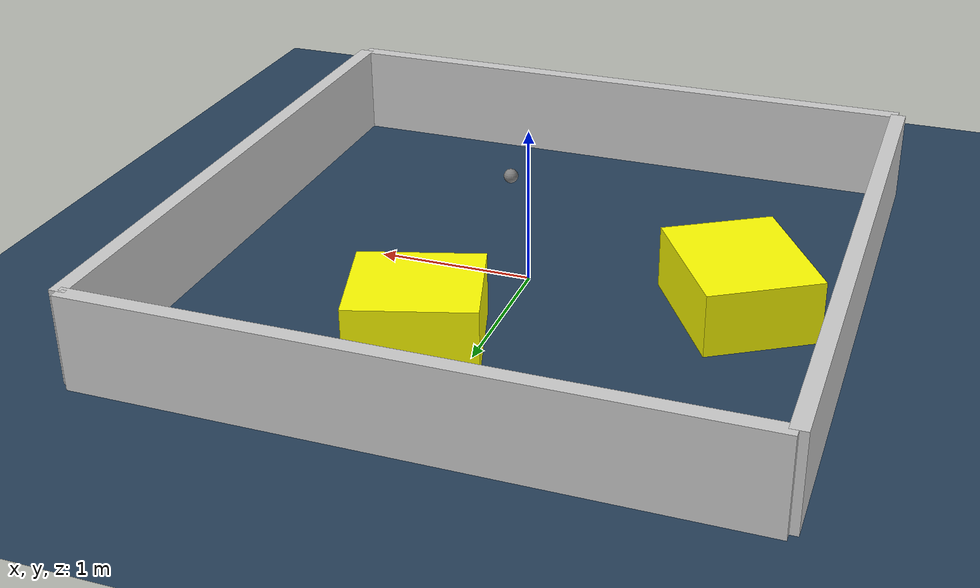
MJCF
<?xml version="1.0" ?>
<mujoco model="generated_environment">
  <option timestep="0.01" integrator="RK4" cone="elliptic"/>
  <default>
    <geom density="1"/>
  </default>
  <asset>
    <texture builtin="gradient" height="3072" rgb1="0.3 0.5 0.7" rgb2="0 0 0" type="skybox" width="512"/>
    <texture builtin="checker" height="300" mark="edge" markrgb="0.8 0.8 0.8" name="groundplane" rgb1="0.2 0.3 0.4" rgb2="0.1 0.2 0.3" type="2d" width="300"/>
    <material name="groundplane" reflectance="0.2" texrepeat="5 5" texture="groundplane" texuniform="true"/>
    <material name="robot" rgba="0.0 1.0 0.0 1"/>
  </asset>
  <worldbody>
    <light dir="0 0 -1" directional="true" pos="0 0 1.5"/>
    <geom condim="4" friction="1.0 0.005 0.001" material="groundplane" name="floor" size="0 0 0.05" type="plane"/>
    <body name="walls">
      <geom name="wall_1" condim="4" pos="-2.0 0.0 0.3" rgba="0.800000011920929 0.800000011920929 0.800000011920929 1.0" size="0.05 2.0 0.3" type="box"/>
      <geom name="wall_2" condim="4" pos="2.0 0.0 0.3" rgba="0.800000011920929 0.800000011920929 0.800000011920929 1.0" size="0.05 2.0 0.3" type="box"/>
      <geom name="wall_3" condim="4" pos="0.0 -2.0 0.3" rgba="0.800000011920929 0.800000011920929 0.800000011920929 1.0" size="2.0 0.05 0.3" type="box"/>
      <geom name="wall_4" condim="4" pos="0.0 2.0 0.3" rgba="0.800000011920929 0.800000011920929 0.800000011920929 1.0" size="2.0 0.05 0.3" type="box"/>
    </body>
    <body name="robot">
      <joint name="joint_x" type="slide" pos="0 0 0" axis="1 0 0"/>
      <joint name="joint_y" type="slide" pos="0 0 0" axis="0 1 0"/>
      <geom name="robot" type="sphere" pos="0.4786931150159255 -1.0088248084905413 0.2" size="0.05" mass="5." friction="1.0 0.005 0.0001" condim="4"/>
      <site name="sensor_ball"/>
    </body>
    <body name="obstacle_1_movable">
      <geom name="obstacle_1_movable" condim="4" pos="-1.3316368377542769 0.001170149467102588 0.2" euler="0 0 121.39950871173484" friction="1.0 0.005 0.001" rgba="1 1 0 1" size="0.4409032207955197 0.36318012863175797 0.2" type="box" mass="0.1"/>
      <joint type="free"/>
    </body>
    <body name="obstacle_2_movable">
      <geom name="obstacle_2_movable" condim="4" pos="0.36670643375110856 0.9319026265350232 0.2" euler="0 0 196.789299408884" friction="1.0 0.005 0.001" rgba="1 1 0 1" size="0.38960908286444207 0.3515442792927919 0.2" type="box" mass="0.1"/>
      <joint type="free"/>
    </body>
  </worldbody>
  <actuator>
    <motor name="actuator_x" joint="joint_x" gear="1" ctrlrange="-1 1"/>
    <motor name="actuator_y" joint="joint_y" gear="1" ctrlrange="-1 1"/>
  </actuator>
</mujoco>
